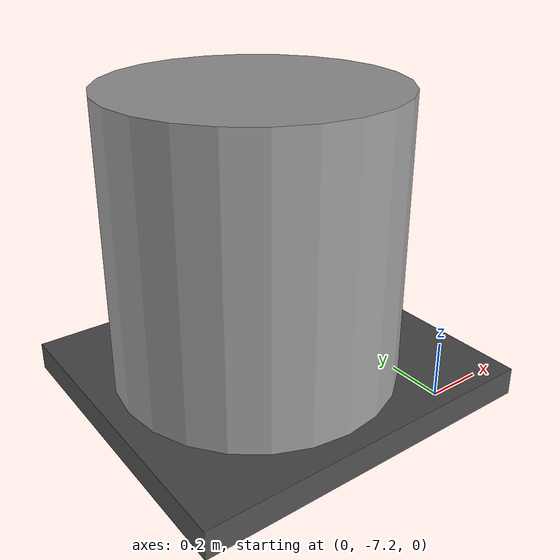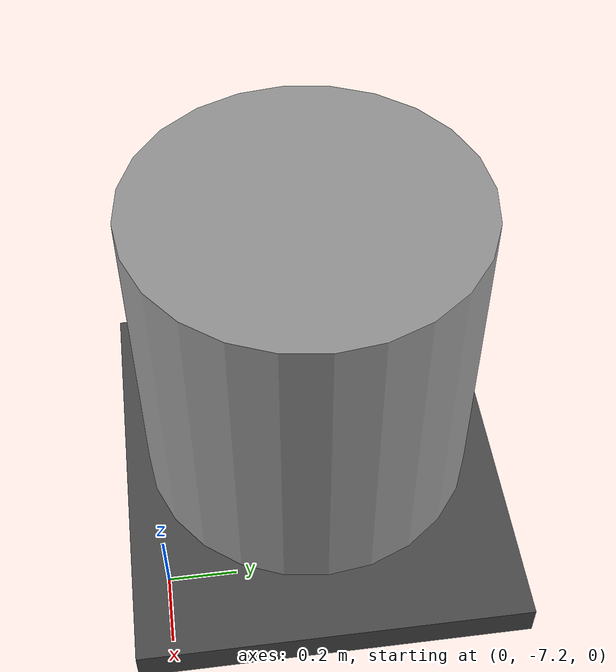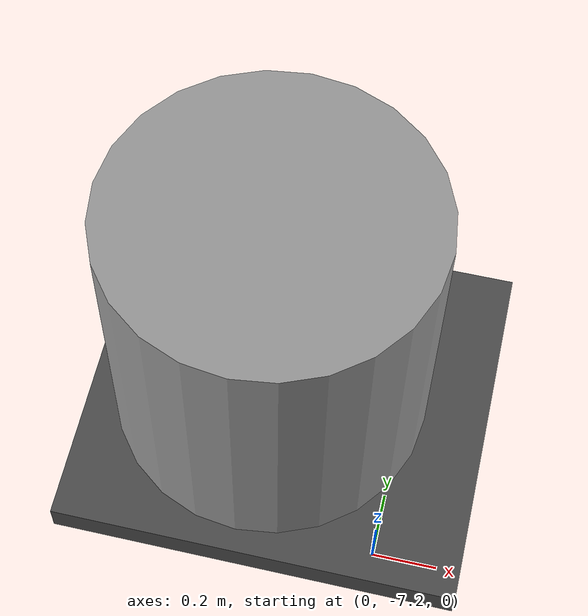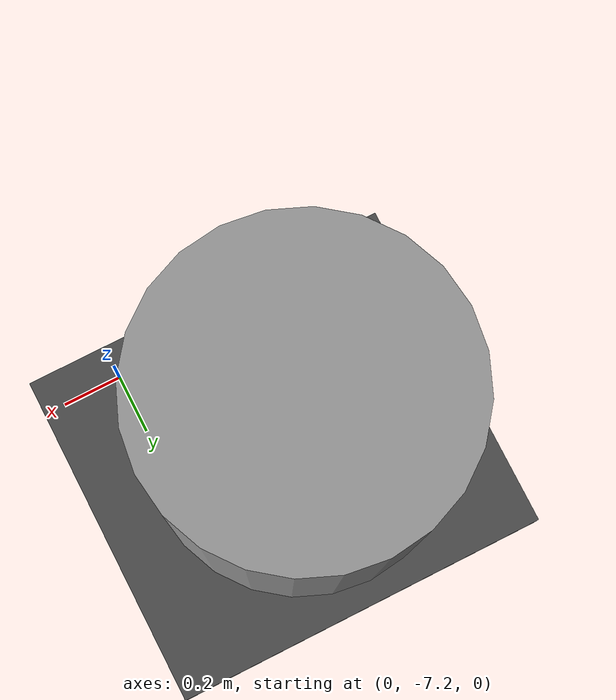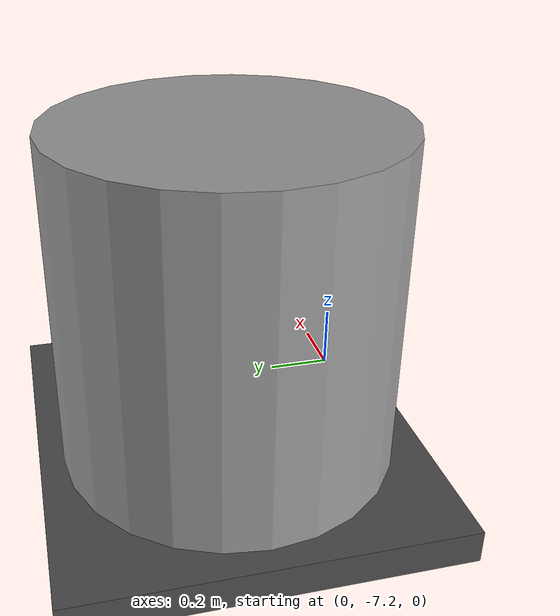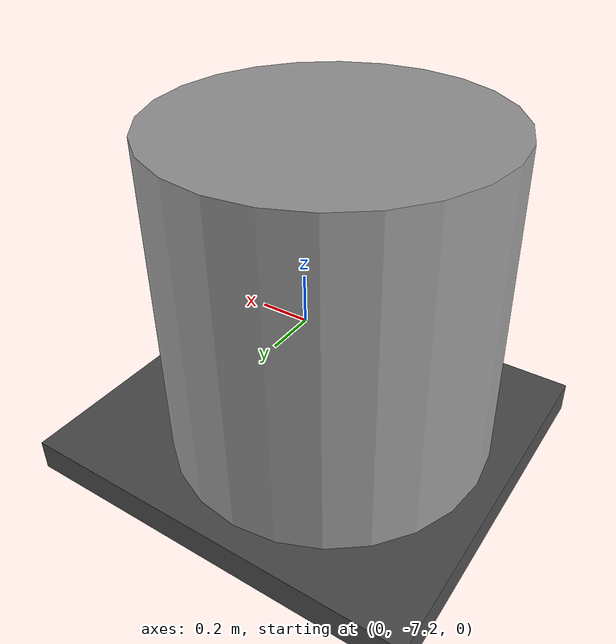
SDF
<sdf version="1.6">
 <world name="default">
  <model name="ground_plane">
   <static>1</static>
   <link name="link">
    <collision name="collision">
     <geometry><plane><normal>0 0 1</normal><size>100 100</size></plane></geometry>
     <surface>
      <contact><collide_bitmask>65535</collide_bitmask></contact>
      <friction><ode><mu>100</mu><mu2>50</mu2></ode></friction>
     </surface>
    </collision>
    <visual name="visual">
     <cast_shadows>0</cast_shadows>
     <geometry><plane><normal>0 0 1</normal><size>100 100</size></plane></geometry>
     <material>
      <script><uri>file://media/materials/scripts/gazebo.material</uri><name>Gazebo/Grey</name></script>
     </material>
    </visual>
   </link>
  </model>
  <model name="asphalt_plane">
   <static>1</static>
   <link name="link">
    <collision name="collision"><geometry><box><size>20 20 0.1</size></box></geometry></collision>
    <visual name="visual">
     <cast_shadows>0</cast_shadows>
     <geometry><box><size>20 20 0.1</size></box></geometry>
     <material>
      <script>
       <uri>model://asphalt_plane/materials/scripts</uri>
       <uri>model://asphalt_plane/materials/textures</uri>
       <name>vrc/asphalt</name>
      </script>
     </material>
    </visual>
   </link>
   <pose>-0.009783 0.654292 0 0 -0 0</pose>
  </model>
  <model name="unit_cylinder">
   <pose>-0.426285 -6.73345 0.55 0 0 -1.9e-05</pose>
   <link name="link">
    <inertial>
     <mass>1</mass>
     <inertia><ixx>0.145833</ixx><ixy>0</ixy><ixz>0</ixz><iyy>0.145833</iyy><iyz>0</iyz><izz>0.125</izz></inertia>
    </inertial>
    <collision name="collision">
     <geometry><cylinder><radius>0.5</radius><length>1</length></cylinder></geometry>
    </collision>
    <visual name="visual">
     <geometry><cylinder><radius>0.5</radius><length>1</length></cylinder></geometry>
     <material>
      <script><name>Gazebo/Grey</name><uri>file://media/materials/scripts/gazebo.material</uri></script>
     </material>
    </visual>
   </link>
  </model>
 </world>
</sdf>
